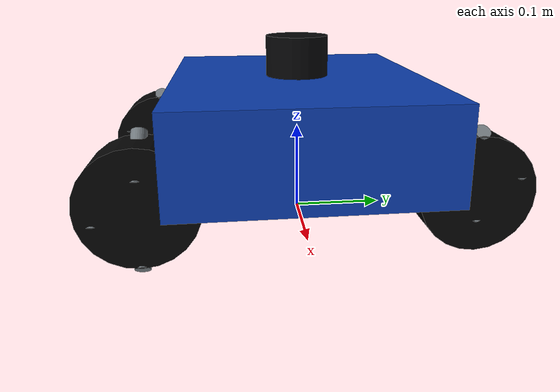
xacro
<?xml version="1.0"?>
<robot xmlns:xacro="http://www.ros.org/wiki/xacro" name="four_wheel_mecanum_robot">
  <xacro:property name="PI" value="3.141592653589793"/>

  <!-- Dimensions supplied by user. Units are meters and kilograms. -->
  <xacro:property name="base_length" value="0.35"/>
  <xacro:property name="base_width" value="0.28"/>
  <xacro:property name="base_height" value="0.10"/>
  <xacro:property name="wheel_radius" value="0.06"/>
  <xacro:property name="wheel_width" value="0.05"/>

  <xacro:property name="base_center_z" value="${wheel_radius + base_height / 2.0}"/>
  <xacro:property name="wheel_x_offset" value="${base_length / 2.0 - wheel_radius}"/>
  <xacro:property name="wheel_y_offset" value="${base_width / 2.0 + wheel_width / 2.0}"/>
  <xacro:property name="wheel_z" value="${wheel_radius}"/>

  <xacro:property name="base_mass" value="6.0"/>
  <xacro:property name="wheel_mass" value="0.35"/>
  <xacro:property name="lidar_mass" value="0.18"/>
  <xacro:property name="lidar_radius" value="0.035"/>
  <xacro:property name="lidar_height" value="0.045"/>
  <xacro:property name="lidar_z" value="${base_center_z + base_height / 2.0 + lidar_height / 2.0}"/>

  <material name="body_blue">
    <color rgba="0.05 0.25 0.70 1.0"/>
  </material>
  <material name="wheel_black">
    <color rgba="0.02 0.02 0.02 1.0"/>
  </material>
  <material name="roller_gray">
    <color rgba="0.45 0.48 0.50 1.0"/>
  </material>
  <material name="lidar_black">
    <color rgba="0.03 0.03 0.035 1.0"/>
  </material>

  <xacro:macro name="box_inertia" params="mass x y z">
    <inertia
      ixx="${mass * (y * y + z * z) / 12.0}" ixy="0" ixz="0"
      iyy="${mass * (x * x + z * z) / 12.0}" iyz="0"
      izz="${mass * (x * x + y * y) / 12.0}"/>
  </xacro:macro>

  <xacro:macro name="cylinder_inertia_x_axis" params="mass radius length">
    <inertia
      ixx="${0.5 * mass * radius * radius}" ixy="0" ixz="0"
      iyy="${mass * (3.0 * radius * radius + length * length) / 12.0}" iyz="0"
      izz="${mass * (3.0 * radius * radius + length * length) / 12.0}"/>
  </xacro:macro>

  <link name="base_footprint"/>

  <joint name="base_footprint_to_base_link" type="fixed">
    <parent link="base_footprint"/>
    <child link="base_link"/>
    <origin xyz="0 0 0" rpy="0 0 0"/>
  </joint>

  <link name="base_link">
    <visual>
      <origin xyz="0 0 ${base_center_z}" rpy="0 0 0"/>
      <geometry>
        <box size="${base_length} ${base_width} ${base_height}"/>
      </geometry>
      <material name="body_blue"/>
    </visual>
    <collision>
      <origin xyz="0 0 ${base_center_z}" rpy="0 0 0"/>
      <geometry>
        <box size="${base_length} ${base_width} ${base_height}"/>
      </geometry>
    </collision>
    <inertial>
      <origin xyz="0 0 ${base_center_z}" rpy="0 0 0"/>
      <mass value="${base_mass}"/>
      <xacro:box_inertia mass="${base_mass}" x="${base_length}" y="${base_width}" z="${base_height}"/>
    </inertial>
  </link>

  <gazebo reference="base_link">
    <material>
      <ambient>0.05 0.25 0.70 1</ambient>
      <diffuse>0.05 0.25 0.70 1</diffuse>
      <specular>0.1 0.1 0.1 1</specular>
    </material>
  </gazebo>

  <xacro:macro name="mecanum_wheel" params="prefix x y roller_sign">
    <link name="${prefix}_wheel_link">
      <visual name="tire">
        <origin xyz="0 0 0" rpy="0 ${pi / 2.0} 0"/>
        <geometry>
          <cylinder radius="${wheel_radius}" length="${wheel_width}"/>
        </geometry>
        <material name="wheel_black"/>
      </visual>
      <xacro:property name="roller_radius" value="0.008"/>
      <xacro:property name="roller_length" value="${wheel_width * 1.15}"/>
      <visual name="roller_0">
        <origin xyz="0 ${wheel_radius * 0.72} 0" rpy="${roller_sign * pi / 4.0} 0 ${pi / 2.0}"/>
        <geometry><cylinder radius="${roller_radius}" length="${roller_length}"/></geometry>
        <material name="roller_gray"/>
      </visual>
      <visual name="roller_1">
        <origin xyz="0 ${-wheel_radius * 0.72} 0" rpy="${roller_sign * pi / 4.0} 0 ${pi / 2.0}"/>
        <geometry><cylinder radius="${roller_radius}" length="${roller_length}"/></geometry>
        <material name="roller_gray"/>
      </visual>
      <visual name="roller_2">
        <origin xyz="0 0 ${wheel_radius * 0.72}" rpy="${roller_sign * pi / 4.0} 0 ${pi / 2.0}"/>
        <geometry><cylinder radius="${roller_radius}" length="${roller_length}"/></geometry>
        <material name="roller_gray"/>
      </visual>
      <visual name="roller_3">
        <origin xyz="0 0 ${-wheel_radius * 0.72}" rpy="${roller_sign * pi / 4.0} 0 ${pi / 2.0}"/>
        <geometry><cylinder radius="${roller_radius}" length="${roller_length}"/></geometry>
        <material name="roller_gray"/>
      </visual>
      <collision>
        <origin xyz="0 0 0" rpy="0 ${pi / 2.0} 0"/>
        <geometry>
          <cylinder radius="${wheel_radius}" length="${wheel_width}"/>
        </geometry>
      </collision>
      <inertial>
        <mass value="${wheel_mass}"/>
        <xacro:cylinder_inertia_x_axis mass="${wheel_mass}" radius="${wheel_radius}" length="${wheel_width}"/>
      </inertial>
    </link>

    <joint name="${prefix}_wheel_joint" type="continuous">
      <parent link="base_link"/>
      <child link="${prefix}_wheel_link"/>
      <origin xyz="${x} ${y} ${wheel_z}" rpy="0 0 0"/>
      <axis xyz="1 0 0"/>
      <dynamics damping="0.05" friction="0.02"/>
    </joint>

    <gazebo reference="${prefix}_wheel_link">
      <material>
        <ambient>0.02 0.02 0.02 1</ambient>
        <diffuse>0.02 0.02 0.02 1</diffuse>
      </material>
      <mu1>1.0</mu1>
      <mu2>1.0</mu2>
    </gazebo>
  </xacro:macro>

  <xacro:mecanum_wheel prefix="front_left" x="${wheel_x_offset}" y="${wheel_y_offset}" roller_sign="1"/>
  <xacro:mecanum_wheel prefix="front_right" x="${wheel_x_offset}" y="${-wheel_y_offset}" roller_sign="-1"/>
  <xacro:mecanum_wheel prefix="rear_left" x="${-wheel_x_offset}" y="${wheel_y_offset}" roller_sign="-1"/>
  <xacro:mecanum_wheel prefix="rear_right" x="${-wheel_x_offset}" y="${-wheel_y_offset}" roller_sign="1"/>

  <link name="laser_frame">
    <visual>
      <origin xyz="0 0 0" rpy="0 0 0"/>
      <geometry>
        <cylinder radius="${lidar_radius}" length="${lidar_height}"/>
      </geometry>
      <material name="lidar_black"/>
    </visual>
    <collision>
      <origin xyz="0 0 0" rpy="0 0 0"/>
      <geometry>
        <cylinder radius="${lidar_radius}" length="${lidar_height}"/>
      </geometry>
    </collision>
    <inertial>
      <mass value="${lidar_mass}"/>
      <inertia
        ixx="${lidar_mass * (3.0 * lidar_radius * lidar_radius + lidar_height * lidar_height) / 12.0}" ixy="0" ixz="0"
        iyy="${lidar_mass * (3.0 * lidar_radius * lidar_radius + lidar_height * lidar_height) / 12.0}" iyz="0"
        izz="${0.5 * lidar_mass * lidar_radius * lidar_radius}"/>
    </inertial>
  </link>

  <joint name="base_link_to_laser_frame" type="fixed">
    <parent link="base_link"/>
    <child link="laser_frame"/>
    <origin xyz="0 0 ${lidar_z}" rpy="0 0 0"/>
  </joint>

  <gazebo reference="laser_frame">
    <sensor name="ydlidar_x4_pro" type="gpu_lidar">
      <always_on>true</always_on>
      <visualize>true</visualize>
      <update_rate>10</update_rate>
      <topic>/scan</topic>
      <gz_frame_id>laser_frame</gz_frame_id>
      <lidar>
        <scan>
          <horizontal>
            <samples>720</samples>
            <resolution>1</resolution>
            <min_angle>${-pi}</min_angle>
            <max_angle>${pi}</max_angle>
          </horizontal>
        </scan>
        <range>
          <min>0.12</min>
          <max>10.0</max>
          <resolution>0.01</resolution>
        </range>
        <noise>
          <type>gaussian</type>
          <mean>0.0</mean>
          <stddev>0.01</stddev>
        </noise>
      </lidar>
    </sensor>
  </gazebo>

  <gazebo>
    <plugin filename="gz-sim-mecanum-drive-system" name="gz::sim::systems::MecanumDrive">
      <front_left_joint>front_left_wheel_joint</front_left_joint>
      <front_right_joint>front_right_wheel_joint</front_right_joint>
      <back_left_joint>rear_left_wheel_joint</back_left_joint>
      <back_right_joint>rear_right_wheel_joint</back_right_joint>
      <wheel_separation>${wheel_y_offset * 2.0}</wheel_separation>
      <wheelbase>${wheel_x_offset * 2.0}</wheelbase>
      <wheel_radius>${wheel_radius}</wheel_radius>
      <odom_publish_frequency>50</odom_publish_frequency>
      <topic>/cmd_vel</topic>
      <odom_topic>/odom</odom_topic>
      <tf_topic>/tf</tf_topic>
      <frame_id>odom</frame_id>
      <child_frame_id>base_footprint</child_frame_id>
    </plugin>

    <plugin filename="gz-sim-joint-state-publisher-system" name="gz::sim::systems::JointStatePublisher">
      <topic>/joint_states</topic>
      <joint_name>front_left_wheel_joint</joint_name>
      <joint_name>front_right_wheel_joint</joint_name>
      <joint_name>rear_left_wheel_joint</joint_name>
      <joint_name>rear_right_wheel_joint</joint_name>
    </plugin>
  </gazebo>
</robot>
